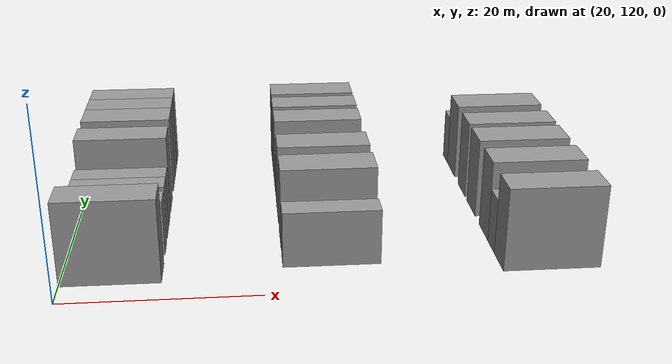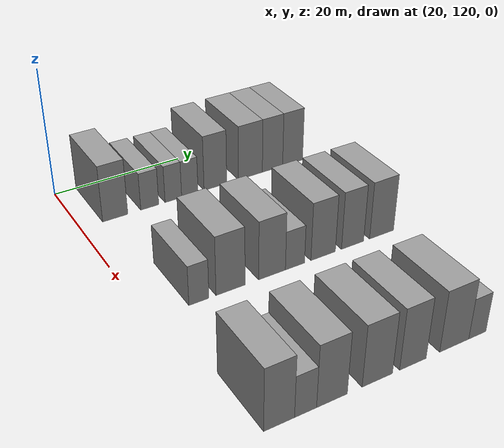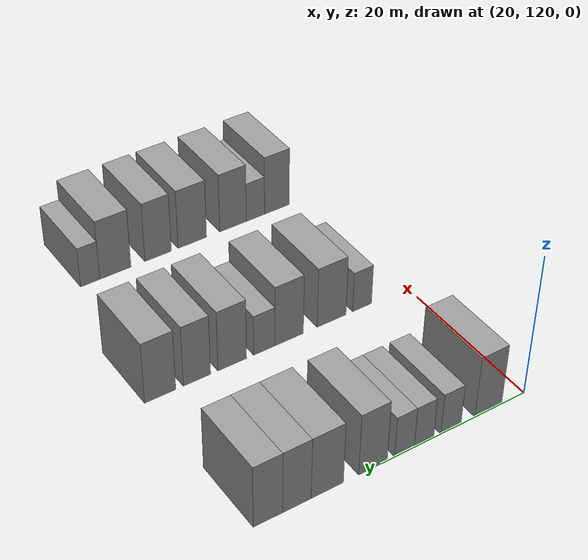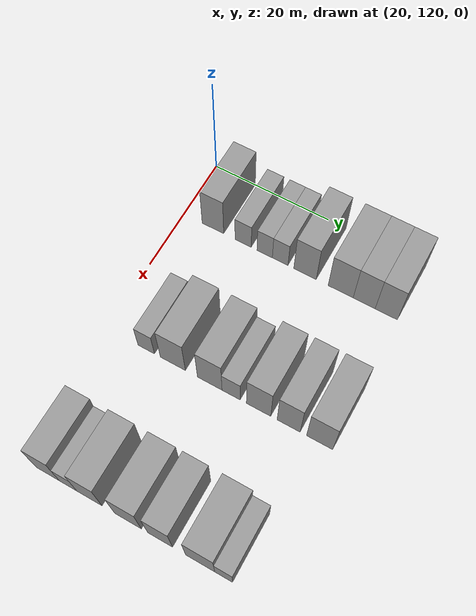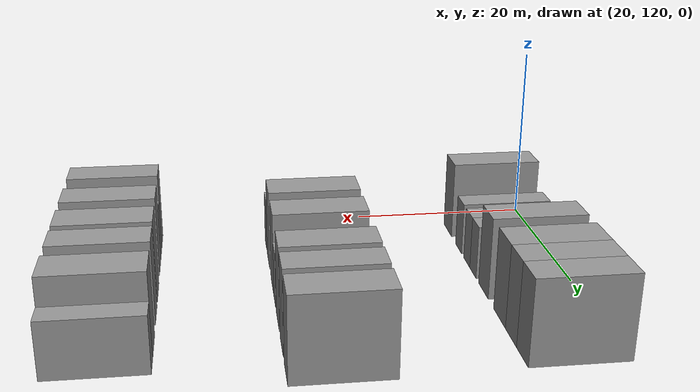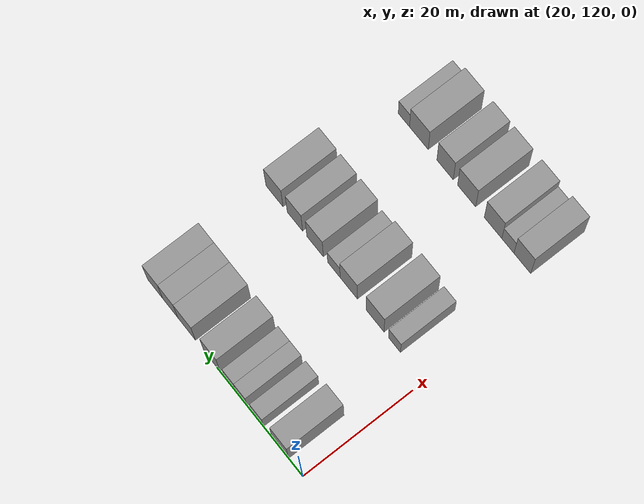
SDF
<sdf version="1.6">
 <world name="default">
  <model name="building_92">
   <static>1</static>
   <pose>25.0000 125.1792 0 0.000000 0.000000 0.000000</pose>
   <link name="link">
    <pose>0 0 4.50 0 0 0</pose>
    <collision name="collision"><geometry><box><size>10.0000 3.8187 9.0000</size></box></geometry></collision>
    <visual name="visual">
     <cast_shadows>0</cast_shadows>
     <geometry><box><size>10.0000 3.8187 9.0000</size></box></geometry>
     <material>
      <script>
       <uri>model://grey_wall/materials/scripts</uri>
       <uri>model://grey_wall/materials/textures</uri>
       <name>vrc/grey_wall</name>
      </script>
     </material>
    </visual>
   </link>
  </model>
  <model name="building_93">
   <static>1</static>
   <pose>25.0000 130.4983 0 0.000000 0.000000 0.000000</pose>
   <link name="link">
    <pose>0 0 3.00 0 0 0</pose>
    <collision name="collision"><geometry><box><size>10.0000 2.8195 6.0000</size></box></geometry></collision>
    <visual name="visual">
     <cast_shadows>0</cast_shadows>
     <geometry><box><size>10.0000 2.8195 6.0000</size></box></geometry>
     <material>
      <script>
       <uri>model://grey_wall/materials/scripts</uri>
       <uri>model://grey_wall/materials/textures</uri>
       <name>vrc/grey_wall</name>
      </script>
     </material>
    </visual>
   </link>
  </model>
  <model name="building_94">
   <static>1</static>
   <pose>25.0000 134.2378 0 0.000000 0.000000 0.000000</pose>
   <link name="link">
    <pose>0 0 3.00 0 0 0</pose>
    <collision name="collision"><geometry><box><size>10.0000 2.6595 6.0000</size></box></geometry></collision>
    <visual name="visual">
     <cast_shadows>0</cast_shadows>
     <geometry><box><size>10.0000 2.6595 6.0000</size></box></geometry>
     <material>
      <script>
       <uri>model://grey_wall/materials/scripts</uri>
       <uri>model://grey_wall/materials/textures</uri>
       <name>vrc/grey_wall</name>
      </script>
     </material>
    </visual>
   </link>
  </model>
  <model name="building_95">
   <static>1</static>
   <pose>25.0000 136.9032 0 0.000000 0.000000 0.000000</pose>
   <link name="link">
    <pose>0 0 3.00 0 0 0</pose>
    <collision name="collision"><geometry><box><size>10.0000 2.6712 6.0000</size></box></geometry></collision>
    <visual name="visual">
     <cast_shadows>0</cast_shadows>
     <geometry><box><size>10.0000 2.6712 6.0000</size></box></geometry>
     <material>
      <script>
       <uri>model://grey_wall/materials/scripts</uri>
       <uri>model://grey_wall/materials/textures</uri>
       <name>vrc/grey_wall</name>
      </script>
     </material>
    </visual>
   </link>
  </model>
  <model name="building_96">
   <static>1</static>
   <pose>25.0000 141.1386 0 0.000000 0.000000 0.000000</pose>
   <link name="link">
    <pose>0 0 4.50 0 0 0</pose>
    <collision name="collision"><geometry><box><size>10.0000 3.7997 9.0000</size></box></geometry></collision>
    <visual name="visual">
     <cast_shadows>0</cast_shadows>
     <geometry><box><size>10.0000 3.7997 9.0000</size></box></geometry>
     <material>
      <script>
       <uri>model://grey_wall/materials/scripts</uri>
       <uri>model://grey_wall/materials/textures</uri>
       <name>vrc/grey_wall</name>
      </script>
     </material>
    </visual>
   </link>
  </model>
  <model name="building_97">
   <static>1</static>
   <pose>25.0000 147.1176 0 0.000000 0.000000 0.000000</pose>
   <link name="link">
    <pose>0 0 4.50 0 0 0</pose>
    <collision name="collision"><geometry><box><size>10.0000 4.1581 9.0000</size></box></geometry></collision>
    <visual name="visual">
     <cast_shadows>0</cast_shadows>
     <geometry><box><size>10.0000 4.1581 9.0000</size></box></geometry>
     <material>
      <script>
       <uri>model://grey_wall/materials/scripts</uri>
       <uri>model://grey_wall/materials/textures</uri>
       <name>vrc/grey_wall</name>
      </script>
     </material>
    </visual>
   </link>
  </model>
  <model name="building_98">
   <static>1</static>
   <pose>25.0000 151.0022 0 0.000000 0.000000 0.000000</pose>
   <link name="link">
    <pose>0 0 4.50 0 0 0</pose>
    <collision name="collision"><geometry><box><size>10.0000 3.6112 9.0000</size></box></geometry></collision>
    <visual name="visual">
     <cast_shadows>0</cast_shadows>
     <geometry><box><size>10.0000 3.6112 9.0000</size></box></geometry>
     <material>
      <script>
       <uri>model://grey_wall/materials/scripts</uri>
       <uri>model://grey_wall/materials/textures</uri>
       <name>vrc/grey_wall</name>
      </script>
     </material>
    </visual>
   </link>
  </model>
  <model name="building_99">
   <static>1</static>
   <pose>25.0000 154.6188 0 0.000000 0.000000 0.000000</pose>
   <link name="link">
    <pose>0 0 4.50 0 0 0</pose>
    <collision name="collision"><geometry><box><size>10.0000 3.6220 9.0000</size></box></geometry></collision>
    <visual name="visual">
     <cast_shadows>0</cast_shadows>
     <geometry><box><size>10.0000 3.6220 9.0000</size></box></geometry>
     <material>
      <script>
       <uri>model://grey_wall/materials/scripts</uri>
       <uri>model://grey_wall/materials/textures</uri>
       <name>vrc/grey_wall</name>
      </script>
     </material>
    </visual>
   </link>
  </model>
  <model name="building_219">
   <static>1</static>
   <pose>47.0000 126.8028 0 0.000000 0.000000 0.000000</pose>
   <link name="link">
    <pose>0 0 3.00 0 0 0</pose>
    <collision name="collision"><geometry><box><size>10.0000 2.7937 6.0000</size></box></geometry></collision>
    <visual name="visual">
     <cast_shadows>0</cast_shadows>
     <geometry><box><size>10.0000 2.7937 6.0000</size></box></geometry>
     <material>
      <script>
       <uri>model://grey_wall/materials/scripts</uri>
       <uri>model://grey_wall/materials/textures</uri>
       <name>vrc/grey_wall</name>
      </script>
     </material>
    </visual>
   </link>
  </model>
  <model name="building_220">
   <static>1</static>
   <pose>47.0000 131.2919 0 0.000000 0.000000 0.000000</pose>
   <link name="link">
    <pose>0 0 4.50 0 0 0</pose>
    <collision name="collision"><geometry><box><size>10.0000 4.1845 9.0000</size></box></geometry></collision>
    <visual name="visual">
     <cast_shadows>0</cast_shadows>
     <geometry><box><size>10.0000 4.1845 9.0000</size></box></geometry>
     <material>
      <script>
       <uri>model://grey_wall/materials/scripts</uri>
       <uri>model://grey_wall/materials/textures</uri>
       <name>vrc/grey_wall</name>
      </script>
     </material>
    </visual>
   </link>
  </model>
  <model name="building_221">
   <static>1</static>
   <pose>47.0000 137.3993 0 0.000000 0.000000 0.000000</pose>
   <link name="link">
    <pose>0 0 4.50 0 0 0</pose>
    <collision name="collision"><geometry><box><size>10.0000 4.0303 9.0000</size></box></geometry></collision>
    <visual name="visual">
     <cast_shadows>0</cast_shadows>
     <geometry><box><size>10.0000 4.0303 9.0000</size></box></geometry>
     <material>
      <script>
       <uri>model://grey_wall/materials/scripts</uri>
       <uri>model://grey_wall/materials/textures</uri>
       <name>vrc/grey_wall</name>
      </script>
     </material>
    </visual>
   </link>
  </model>
  <model name="building_222">
   <static>1</static>
   <pose>47.0000 140.8887 0 0.000000 0.000000 0.000000</pose>
   <link name="link">
    <pose>0 0 3.00 0 0 0</pose>
    <collision name="collision"><geometry><box><size>10.0000 2.9484 6.0000</size></box></geometry></collision>
    <visual name="visual">
     <cast_shadows>0</cast_shadows>
     <geometry><box><size>10.0000 2.9484 6.0000</size></box></geometry>
     <material>
      <script>
       <uri>model://grey_wall/materials/scripts</uri>
       <uri>model://grey_wall/materials/textures</uri>
       <name>vrc/grey_wall</name>
      </script>
     </material>
    </visual>
   </link>
  </model>
  <model name="building_223">
   <static>1</static>
   <pose>47.0000 145.3099 0 0.000000 0.000000 0.000000</pose>
   <link name="link">
    <pose>0 0 4.50 0 0 0</pose>
    <collision name="collision"><geometry><box><size>10.0000 3.8939 9.0000</size></box></geometry></collision>
    <visual name="visual">
     <cast_shadows>0</cast_shadows>
     <geometry><box><size>10.0000 3.8939 9.0000</size></box></geometry>
     <material>
      <script>
       <uri>model://grey_wall/materials/scripts</uri>
       <uri>model://grey_wall/materials/textures</uri>
       <name>vrc/grey_wall</name>
      </script>
     </material>
    </visual>
   </link>
  </model>
  <model name="building_224">
   <static>1</static>
   <pose>47.0000 150.0738 0 0.000000 0.000000 0.000000</pose>
   <link name="link">
    <pose>0 0 4.50 0 0 0</pose>
    <collision name="collision"><geometry><box><size>10.0000 3.6339 9.0000</size></box></geometry></collision>
    <visual name="visual">
     <cast_shadows>0</cast_shadows>
     <geometry><box><size>10.0000 3.6339 9.0000</size></box></geometry>
     <material>
      <script>
       <uri>model://grey_wall/materials/scripts</uri>
       <uri>model://grey_wall/materials/textures</uri>
       <name>vrc/grey_wall</name>
      </script>
     </material>
    </visual>
   </link>
  </model>
  <model name="building_225">
   <static>1</static>
   <pose>47.0000 154.9216 0 0.000000 0.000000 0.000000</pose>
   <link name="link">
    <pose>0 0 4.50 0 0 0</pose>
    <collision name="collision"><geometry><box><size>10.0000 4.0617 9.0000</size></box></geometry></collision>
    <visual name="visual">
     <cast_shadows>0</cast_shadows>
     <geometry><box><size>10.0000 4.0617 9.0000</size></box></geometry>
     <material>
      <script>
       <uri>model://grey_wall/materials/scripts</uri>
       <uri>model://grey_wall/materials/textures</uri>
       <name>vrc/grey_wall</name>
      </script>
     </material>
    </visual>
   </link>
  </model>
  <model name="building_333">
   <static>1</static>
   <pose>69.0000 124.7517 0 0.000000 0.000000 0.000000</pose>
   <link name="link">
    <pose>0 0 4.50 0 0 0</pose>
    <collision name="collision"><geometry><box><size>10.0000 3.8440 9.0000</size></box></geometry></collision>
    <visual name="visual">
     <cast_shadows>0</cast_shadows>
     <geometry><box><size>10.0000 3.8440 9.0000</size></box></geometry>
     <material>
      <script>
       <uri>model://grey_wall/materials/scripts</uri>
       <uri>model://grey_wall/materials/textures</uri>
       <name>vrc/grey_wall</name>
      </script>
     </material>
    </visual>
   </link>
  </model>
  <model name="building_334">
   <static>1</static>
   <pose>69.0000 128.0789 0 0.000000 0.000000 0.000000</pose>
   <link name="link">
    <pose>0 0 3.00 0 0 0</pose>
    <collision name="collision"><geometry><box><size>10.0000 2.8105 6.0000</size></box></geometry></collision>
    <visual name="visual">
     <cast_shadows>0</cast_shadows>
     <geometry><box><size>10.0000 2.8105 6.0000</size></box></geometry>
     <material>
      <script>
       <uri>model://grey_wall/materials/scripts</uri>
       <uri>model://grey_wall/materials/textures</uri>
       <name>vrc/grey_wall</name>
      </script>
     </material>
    </visual>
   </link>
  </model>
  <model name="building_335">
   <static>1</static>
   <pose>69.0000 131.5022 0 0.000000 0.000000 0.000000</pose>
   <link name="link">
    <pose>0 0 4.50 0 0 0</pose>
    <collision name="collision"><geometry><box><size>10.0000 4.0361 9.0000</size></box></geometry></collision>
    <visual name="visual">
     <cast_shadows>0</cast_shadows>
     <geometry><box><size>10.0000 4.0361 9.0000</size></box></geometry>
     <material>
      <script>
       <uri>model://grey_wall/materials/scripts</uri>
       <uri>model://grey_wall/materials/textures</uri>
       <name>vrc/grey_wall</name>
      </script>
     </material>
    </visual>
   </link>
  </model>
  <model name="building_336">
   <static>1</static>
   <pose>69.0000 137.6210 0 0.000000 0.000000 0.000000</pose>
   <link name="link">
    <pose>0 0 4.50 0 0 0</pose>
    <collision name="collision"><geometry><box><size>10.0000 4.2015 9.0000</size></box></geometry></collision>
    <visual name="visual">
     <cast_shadows>0</cast_shadows>
     <geometry><box><size>10.0000 4.2015 9.0000</size></box></geometry>
     <material>
      <script>
       <uri>model://grey_wall/materials/scripts</uri>
       <uri>model://grey_wall/materials/textures</uri>
       <name>vrc/grey_wall</name>
      </script>
     </material>
    </visual>
   </link>
  </model>
  <model name="building_337">
   <static>1</static>
   <pose>69.0000 142.6342 0 0.000000 0.000000 0.000000</pose>
   <link name="link">
    <pose>0 0 4.50 0 0 0</pose>
    <collision name="collision"><geometry><box><size>10.0000 3.8247 9.0000</size></box></geometry></collision>
    <visual name="visual">
     <cast_shadows>0</cast_shadows>
     <geometry><box><size>10.0000 3.8247 9.0000</size></box></geometry>
     <material>
      <script>
       <uri>model://grey_wall/materials/scripts</uri>
       <uri>model://grey_wall/materials/textures</uri>
       <name>vrc/grey_wall</name>
      </script>
     </material>
    </visual>
   </link>
  </model>
  <model name="building_338">
   <static>1</static>
   <pose>69.0000 148.7472 0 0.000000 0.000000 0.000000</pose>
   <link name="link">
    <pose>0 0 4.50 0 0 0</pose>
    <collision name="collision"><geometry><box><size>10.0000 4.4014 9.0000</size></box></geometry></collision>
    <visual name="visual">
     <cast_shadows>0</cast_shadows>
     <geometry><box><size>10.0000 4.4014 9.0000</size></box></geometry>
     <material>
      <script>
       <uri>model://grey_wall/materials/scripts</uri>
       <uri>model://grey_wall/materials/textures</uri>
       <name>vrc/grey_wall</name>
      </script>
     </material>
    </visual>
   </link>
  </model>
  <model name="building_339">
   <static>1</static>
   <pose>69.0000 152.2772 0 0.000000 0.000000 0.000000</pose>
   <link name="link">
    <pose>0 0 3.00 0 0 0</pose>
    <collision name="collision"><geometry><box><size>10.0000 2.6586 6.0000</size></box></geometry></collision>
    <visual name="visual">
     <cast_shadows>0</cast_shadows>
     <geometry><box><size>10.0000 2.6586 6.0000</size></box></geometry>
     <material>
      <script>
       <uri>model://grey_wall/materials/scripts</uri>
       <uri>model://grey_wall/materials/textures</uri>
       <name>vrc/grey_wall</name>
      </script>
     </material>
    </visual>
   </link>
  </model>
 </world>
</sdf>
